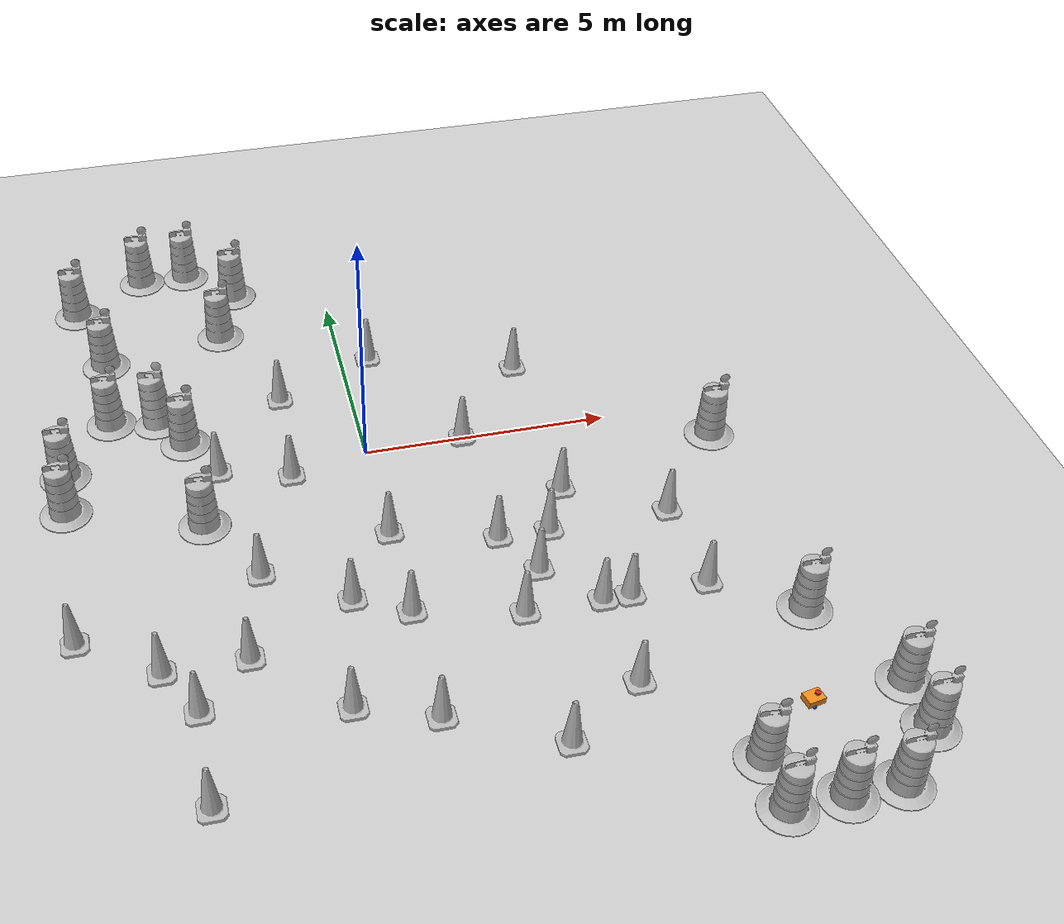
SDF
<sdf version="1.7">
 <world name="default">
  <light name="sun" type="directional">
   <pose>0 0 10 0 -0 0</pose>
   <diffuse>0.8 0.8 0.8 1</diffuse>
   <specular>0.2 0.2 0.2 1</specular>
   <attenuation>
    <range>1000</range>
    <constant>0.9</constant>
    <linear>0.01</linear>
    <quadratic>0.001</quadratic>
   </attenuation>
   <direction>-0.5 0.1 -0.9</direction>
   <spot><inner_angle>0</inner_angle><outer_angle>0</outer_angle><falloff>0</falloff></spot>
  </light>
  <model name="ground_plane">
   <static>1</static>
   <link name="link">
    <collision name="collision">
     <geometry><plane><normal>0 0 1</normal><size>100 100</size></plane></geometry>
     <surface>
      <contact><collide_bitmask>65535</collide_bitmask></contact>
      <friction><ode><mu>100</mu><mu2>50</mu2></ode></friction>
     </surface>
    </collision>
    <visual name="visual">
     <cast_shadows>0</cast_shadows>
     <geometry><plane><normal>0 0 1</normal><size>100 100</size></plane></geometry>
     <material>
      <script><uri>file://media/materials/scripts/gazebo.material</uri><name>Gazebo/Grey</name></script>
     </material>
    </visual>
   </link>
  </model>
  <gravity>0 0 -9.8</gravity>
  <magnetic_field>6e-06 2.3e-05 -4.2e-05</magnetic_field>
  <atmosphere type="adiabatic"/>
  <physics type="ode">
   <max_step_size>0.001</max_step_size>
   <real_time_factor>1</real_time_factor>
   <real_time_update_rate>1000</real_time_update_rate>
  </physics>
  <scene><ambient>0.4 0.4 0.4 1</ambient><background>0.7 0.7 0.7 1</background><shadows>1</shadows></scene>
  <audio><device>default</device></audio>
  <spherical_coordinates>
   <surface_model>EARTH_WGS84</surface_model>
   <latitude_deg>0</latitude_deg>
   <longitude_deg>0</longitude_deg>
   <elevation>0</elevation>
   <heading_deg>0</heading_deg>
  </spherical_coordinates>
  <model name="my_bot">
   <link name="base_link">
    <inertial>
     <pose>-0.071082 0 0.075033 0 -0 0</pose>
     <mass>0.61</mass>
     <inertia>
      <ixx>0.00482981</ixx>
      <ixy>0</ixy>
      <ixz>0.000516598</ixz>
      <iyy>0.00702444</iyy>
      <iyz>0</iyz>
      <izz>0.0081721</izz>
     </inertia>
    </inertial>
    <collision name="base_link_fixed_joint_lump__chassis_collision">
     <pose>-0.0585 0 0.059 0 -0 0</pose>
     <geometry><box><size>0.335 0.265 0.138</size></box></geometry>
    </collision>
    <collision name="base_link_fixed_joint_lump__caster_wheel_collision_1">
     <pose>-0.151 0 -0.023 0 -0 0</pose>
     <geometry><sphere><radius>0.01</radius></sphere></geometry>
     <surface><friction><ode><mu>0.001</mu><mu2>0.001</mu2></ode></friction></surface>
    </collision>
    <collision name="base_link_fixed_joint_lump__laser_frame_collision_2">
     <pose>-0.126 0 0.165 0 -0 0</pose>
     <geometry><cylinder><length>0.04</length><radius>0.05</radius></cylinder></geometry>
    </collision>
    <visual name="base_link_fixed_joint_lump__chassis_visual">
     <pose>-0.0585 0 0.059 0 -0 0</pose>
     <geometry><box><size>0.335 0.265 0.138</size></box></geometry>
     <material>
      <script><name>Gazebo/Orange</name><uri>file://media/materials/scripts/gazebo.material</uri></script>
     </material>
    </visual>
    <visual name="base_link_fixed_joint_lump__camera_link_visual_1">
     <pose>0.079 0 0.07 0 -0 0</pose>
     <geometry><box><size>0.01 0.03 0.03</size></box></geometry>
     <material>
      <script><name>Gazebo/Red</name><uri>file://media/materials/scripts/gazebo.material</uri></script>
     </material>
    </visual>
    <visual name="base_link_fixed_joint_lump__caster_wheel_visual_2">
     <pose>-0.151 0 -0.023 0 -0 0</pose>
     <geometry><sphere><radius>0.01</radius></sphere></geometry>
     <material>
      <script><name>Gazebo/White</name><uri>file://media/materials/scripts/gazebo.material</uri></script>
     </material>
    </visual>
    <visual name="base_link_fixed_joint_lump__laser_frame_visual_3">
     <pose>-0.126 0 0.165 0 -0 0</pose>
     <geometry><cylinder><length>0.04</length><radius>0.05</radius></cylinder></geometry>
     <material>
      <script><name>Gazebo/Red</name><uri>file://media/materials/scripts/gazebo.material</uri></script>
     </material>
    </visual>
    <sensor name="camera" type="camera">
     <visualize>1</visualize>
     <update_rate>10</update_rate>
     <camera>
      <horizontal_fov>1.089</horizontal_fov>
      <image><format>R8G8B8</format><width>640</width><height>480</height></image>
      <clip><near>0.05</near><far>8</far></clip>
     </camera>
     <plugin name="camera_controller" filename="libgazebo_ros_camera.so">
      <frame_name>camera_link_optical</frame_name>
     </plugin>
     <pose>0.079 0 0.07 0 -0 0</pose>
    </sensor>
    <sensor name="laser" type="ray">
     <visualize>1</visualize>
     <update_rate>10</update_rate>
     <ray>
      <scan>
       <horizontal>
        <samples>360</samples>
        <min_angle>-3.14</min_angle>
        <max_angle>3.14</max_angle>
        <resolution>1</resolution>
       </horizontal>
       <vertical><samples>1</samples><min_angle>0</min_angle><max_angle>0</max_angle></vertical>
      </scan>
      <range><min>0.3</min><max>12</max></range>
     </ray>
     <plugin name="laser_controller" filename="libgazebo_ros_ray_sensor.so">
      <ros><argument>~/out:=scan</argument></ros>
      <output_type>sensor_msgs/LaserScan</output_type>
      <frame_name>laser_frame</frame_name>
     </plugin>
     <pose>-0.126 0 0.165 0 -0 0</pose>
    </sensor>
   </link>
   <joint name="left_wheel_joint" type="revolute">
    <pose relative_to="base_link">0 0.1485 0 -1.5708 0 0</pose>
    <parent>base_link</parent>
    <child>left_wheel</child>
    <axis>
     <xyz>0 0 1</xyz>
     <limit><lower>-1e+16</lower><upper>1e+16</upper></limit>
     <dynamics><spring_reference>0</spring_reference><spring_stiffness>0</spring_stiffness></dynamics>
    </axis>
   </joint>
   <link name="left_wheel">
    <pose relative_to="left_wheel_joint">0 0 0 0 -0 0</pose>
    <inertial>
     <mass>0.05</mass>
     <inertia>
      <ixx>1.64292e-05</ixx>
      <ixy>0</ixy>
      <ixz>0</ixz>
      <iyy>1.64292e-05</iyy>
      <iyz>0</iyz>
      <izz>2.7225e-05</izz>
     </inertia>
    </inertial>
    <collision name="left_wheel_collision">
     <geometry><sphere><radius>0.033</radius></sphere></geometry>
    </collision>
    <visual name="left_wheel_visual">
     <geometry><cylinder><length>0.026</length><radius>0.033</radius></cylinder></geometry>
     <material>
      <script><name>Gazebo/Blue</name><uri>file://media/materials/scripts/gazebo.material</uri></script>
     </material>
    </visual>
   </link>
   <joint name="right_wheel_joint" type="revolute">
    <pose relative_to="base_link">0 -0.1485 0 1.5708 -0 0</pose>
    <parent>base_link</parent>
    <child>right_wheel</child>
    <axis>
     <xyz>0 0 -1</xyz>
     <limit><lower>-1e+16</lower><upper>1e+16</upper></limit>
     <dynamics><spring_reference>0</spring_reference><spring_stiffness>0</spring_stiffness></dynamics>
    </axis>
   </joint>
   <link name="right_wheel">
    <pose relative_to="right_wheel_joint">0 0 0 0 -0 0</pose>
    <inertial>
     <mass>0.05</mass>
     <inertia>
      <ixx>1.64292e-05</ixx>
      <ixy>0</ixy>
      <ixz>0</ixz>
      <iyy>1.64292e-05</iyy>
      <iyz>0</iyz>
      <izz>2.7225e-05</izz>
     </inertia>
    </inertial>
    <collision name="right_wheel_collision">
     <geometry><sphere><radius>0.033</radius></sphere></geometry>
    </collision>
    <visual name="right_wheel_visual">
     <geometry><cylinder><length>0.026</length><radius>0.033</radius></cylinder></geometry>
     <material>
      <script><name>Gazebo/Blue</name><uri>file://media/materials/scripts/gazebo.material</uri></script>
     </material>
    </visual>
   </link>
   <static>0</static>
   <plugin name="diff_drive" filename="libgazebo_ros_diff_drive.so">
    <left_joint>left_wheel_joint</left_joint>
    <right_joint>right_wheel_joint</right_joint>
    <wheel_separation>0.35</wheel_separation>
    <wheel_diameter>0.1</wheel_diameter>
    <max_wheel_torque>200</max_wheel_torque>
    <max_wheel_acceleration>10.0</max_wheel_acceleration>
    <odometry_frame>odom</odometry_frame>
    <robot_base_frame>base_link</robot_base_frame>
    <publish_odom>1</publish_odom>
    <publish_odom_tf>1</publish_odom_tf>
    <publish_wheel_tf>1</publish_wheel_tf>
   </plugin>
   <pose>6.22887 -8.04606 0.032997 -1.8e-05 1.9e-05 -2.95077</pose>
  </model>
  <model name="Construction Barrel">
   <link name="link">
    <inertial>
     <pose>0 0 0.4 0 -0 0</pose>
     <mass>500</mass>
     <inertia><ixx>51.2096</ixx><iyy>51.2096</iyy><izz>25</izz><ixy>0</ixy><ixz>0</ixz><iyz>0</iyz></inertia>
    </inertial>
    <collision name="collision">
     <geometry><mesh><uri>model://construction_barrel/meshes/construction_barrel.dae</uri></mesh></geometry>
    </collision>
    <visual name="visual">
     <geometry><mesh><uri>model://construction_barrel/meshes/construction_barrel.dae</uri></mesh></geometry>
    </visual>
   </link>
   <pose>-3.56836 1.04385 -0 0 -0 -0.001953</pose>
  </model>
  <model name="Construction Barrel_clone">
   <link name="link">
    <inertial>
     <pose>0 0 0.4 0 -0 0</pose>
     <mass>500</mass>
     <inertia><ixx>51.2096</ixx><iyy>51.2096</iyy><izz>25</izz><ixy>0</ixy><ixz>0</ixz><iyz>0</iyz></inertia>
    </inertial>
    <collision name="collision">
     <geometry><mesh><uri>model://construction_barrel/meshes/construction_barrel.dae</uri></mesh></geometry>
    </collision>
    <visual name="visual">
     <geometry><mesh><uri>model://construction_barrel/meshes/construction_barrel.dae</uri></mesh></geometry>
    </visual>
   </link>
   <pose>-6.00012 0.554069 -3e-06 -6e-06 -5e-06 -3.3e-05</pose>
  </model>
  <model name="Construction Barrel_clone_0">
   <link name="link">
    <inertial>
     <pose>0 0 0.4 0 -0 0</pose>
     <mass>500</mass>
     <inertia><ixx>51.2096</ixx><iyy>51.2096</iyy><izz>25</izz><ixy>0</ixy><ixz>0</ixz><iyz>0</iyz></inertia>
    </inertial>
    <collision name="collision">
     <geometry><mesh><uri>model://construction_barrel/meshes/construction_barrel.dae</uri></mesh></geometry>
    </collision>
    <visual name="visual">
     <geometry><mesh><uri>model://construction_barrel/meshes/construction_barrel.dae</uri></mesh></geometry>
    </visual>
   </link>
   <pose>-5.01001 2.00128 3.6e-05 -3e-05 0.000169 0.002303</pose>
  </model>
  <model name="Construction Barrel_clone_1">
   <link name="link">
    <inertial>
     <pose>0 0 0.4 0 -0 0</pose>
     <mass>500</mass>
     <inertia><ixx>51.2096</ixx><iyy>51.2096</iyy><izz>25</izz><ixy>0</ixy><ixz>0</ixz><iyz>0</iyz></inertia>
    </inertial>
    <collision name="collision">
     <geometry><mesh><uri>model://construction_barrel/meshes/construction_barrel.dae</uri></mesh></geometry>
    </collision>
    <visual name="visual">
     <geometry><mesh><uri>model://construction_barrel/meshes/construction_barrel.dae</uri></mesh></geometry>
    </visual>
   </link>
   <pose>-4.04418 1.71858 0.053636 -0.092781 -0.050303 -0.206497</pose>
  </model>
  <model name="Construction Barrel_clone_3">
   <link name="link">
    <inertial>
     <pose>0 0 0.4 0 -0 0</pose>
     <mass>500</mass>
     <inertia><ixx>51.2096</ixx><iyy>51.2096</iyy><izz>25</izz><ixy>0</ixy><ixz>0</ixz><iyz>0</iyz></inertia>
    </inertial>
    <collision name="collision">
     <geometry><mesh><uri>model://construction_barrel/meshes/construction_barrel.dae</uri></mesh></geometry>
    </collision>
    <visual name="visual">
     <geometry><mesh><uri>model://construction_barrel/meshes/construction_barrel.dae</uri></mesh></geometry>
    </visual>
   </link>
   <pose>-3.43126 -1.44315 1e-06 3e-06 2e-06 -3.3e-05</pose>
  </model>
  <model name="Construction Barrel_clone_4">
   <link name="link">
    <inertial>
     <pose>0 0 0.4 0 -0 0</pose>
     <mass>500</mass>
     <inertia><ixx>51.2096</ixx><iyy>51.2096</iyy><izz>25</izz><ixy>0</ixy><ixz>0</ixz><iyz>0</iyz></inertia>
    </inertial>
    <collision name="collision">
     <geometry><mesh><uri>model://construction_barrel/meshes/construction_barrel.dae</uri></mesh></geometry>
    </collision>
    <visual name="visual">
     <geometry><mesh><uri>model://construction_barrel/meshes/construction_barrel.dae</uri></mesh></geometry>
    </visual>
   </link>
   <pose>-6.02896 -0.525115 -2e-06 -7e-06 -4e-06 -3.7e-05</pose>
  </model>
  <model name="Construction Cone">
   <link name="link">
    <collision name="collision">
     <geometry>
      <mesh><scale>10 10 10</scale><uri>model://construction_cone/meshes/construction_cone.dae</uri></mesh>
     </geometry>
    </collision>
    <visual name="visual">
     <geometry>
      <mesh><scale>10 10 10</scale><uri>model://construction_cone/meshes/construction_cone.dae</uri></mesh>
     </geometry>
    </visual>
    <inertial>
     <inertia><ixx>1</ixx><ixy>0</ixy><ixz>0</ixz><iyy>1</iyy><iyz>0</iyz><izz>1</izz></inertia>
     <mass>1</mass>
    </inertial>
   </link>
   <pose>-1.58718 -0.411113 -0 -0 -1e-06 5.8e-05</pose>
  </model>
  <model name="Construction Cone_clone">
   <link name="link">
    <collision name="collision">
     <geometry>
      <mesh><scale>10 10 10</scale><uri>model://construction_cone/meshes/construction_cone.dae</uri></mesh>
     </geometry>
    </collision>
    <visual name="visual">
     <geometry>
      <mesh><scale>10 10 10</scale><uri>model://construction_cone/meshes/construction_cone.dae</uri></mesh>
     </geometry>
    </visual>
    <inertial>
     <inertia><ixx>1</ixx><ixy>0</ixy><ixz>0</ixz><iyy>1</iyy><iyz>0</iyz><izz>1</izz></inertia>
     <mass>1</mass>
    </inertial>
   </link>
   <pose>-1.4841 2 0 -0 -0 -0</pose>
  </model>
  <model name="Construction Cone_clone_0">
   <link name="link">
    <collision name="collision">
     <geometry>
      <mesh><scale>10 10 10</scale><uri>model://construction_cone/meshes/construction_cone.dae</uri></mesh>
     </geometry>
    </collision>
    <visual name="visual">
     <geometry>
      <mesh><scale>10 10 10</scale><uri>model://construction_cone/meshes/construction_cone.dae</uri></mesh>
     </geometry>
    </visual>
    <inertial>
     <inertia><ixx>1</ixx><ixy>0</ixy><ixz>0</ixz><iyy>1</iyy><iyz>0</iyz><izz>1</izz></inertia>
     <mass>1</mass>
    </inertial>
   </link>
   <pose>0.581023 3 -0 0 -1e-06 0</pose>
  </model>
  <model name="Construction Cone_clone_1">
   <link name="link">
    <collision name="collision">
     <geometry>
      <mesh><scale>10 10 10</scale><uri>model://construction_cone/meshes/construction_cone.dae</uri></mesh>
     </geometry>
    </collision>
    <visual name="visual">
     <geometry>
      <mesh><scale>10 10 10</scale><uri>model://construction_cone/meshes/construction_cone.dae</uri></mesh>
     </geometry>
    </visual>
    <inertial>
     <inertia><ixx>1</ixx><ixy>0</ixy><ixz>0</ixz><iyy>1</iyy><iyz>0</iyz><izz>1</izz></inertia>
     <mass>1</mass>
    </inertial>
   </link>
   <pose>2 0 -1e-05 -0 -0 -0</pose>
  </model>
  <model name="Construction Cone_clone_2">
   <link name="link">
    <collision name="collision">
     <geometry>
      <mesh><scale>10 10 10</scale><uri>model://construction_cone/meshes/construction_cone.dae</uri></mesh>
     </geometry>
    </collision>
    <visual name="visual">
     <geometry>
      <mesh><scale>10 10 10</scale><uri>model://construction_cone/meshes/construction_cone.dae</uri></mesh>
     </geometry>
    </visual>
    <inertial>
     <inertia><ixx>1</ixx><ixy>0</ixy><ixz>0</ixz><iyy>1</iyy><iyz>0</iyz><izz>1</izz></inertia>
     <mass>1</mass>
    </inertial>
   </link>
   <pose>2.53986 -4 -0 0 -1e-06 0</pose>
  </model>
  <model name="Construction Cone_clone_3">
   <link name="link">
    <collision name="collision">
     <geometry>
      <mesh><scale>10 10 10</scale><uri>model://construction_cone/meshes/construction_cone.dae</uri></mesh>
     </geometry>
    </collision>
    <visual name="visual">
     <geometry>
      <mesh><scale>10 10 10</scale><uri>model://construction_cone/meshes/construction_cone.dae</uri></mesh>
     </geometry>
    </visual>
    <inertial>
     <inertia><ixx>1</ixx><ixy>0</ixy><ixz>0</ixz><iyy>1</iyy><iyz>0</iyz><izz>1</izz></inertia>
     <mass>1</mass>
    </inertial>
   </link>
   <pose>-0 -4.53044 -0 0 -1e-06 0</pose>
  </model>
  <model name="Construction Cone_clone_4">
   <link name="link">
    <collision name="collision">
     <geometry>
      <mesh><scale>10 10 10</scale><uri>model://construction_cone/meshes/construction_cone.dae</uri></mesh>
     </geometry>
    </collision>
    <visual name="visual">
     <geometry>
      <mesh><scale>10 10 10</scale><uri>model://construction_cone/meshes/construction_cone.dae</uri></mesh>
     </geometry>
    </visual>
    <inertial>
     <inertia><ixx>1</ixx><ixy>0</ixy><ixz>0</ixz><iyy>1</iyy><iyz>0</iyz><izz>1</izz></inertia>
     <mass>1</mass>
    </inertial>
   </link>
   <pose>-1 -4 -0 0 -0 0</pose>
  </model>
  <model name="Construction Cone_clone_5">
   <link name="link">
    <collision name="collision">
     <geometry>
      <mesh><scale>10 10 10</scale><uri>model://construction_cone/meshes/construction_cone.dae</uri></mesh>
     </geometry>
    </collision>
    <visual name="visual">
     <geometry>
      <mesh><scale>10 10 10</scale><uri>model://construction_cone/meshes/construction_cone.dae</uri></mesh>
     </geometry>
    </visual>
    <inertial>
     <inertia><ixx>1</ixx><ixy>0</ixy><ixz>0</ixz><iyy>1</iyy><iyz>0</iyz><izz>1</izz></inertia>
     <mass>1</mass>
    </inertial>
   </link>
   <pose>-0 -2.43874 -0 0 -1e-06 0</pose>
  </model>
  <model name="Construction Cone_clone_6">
   <link name="link">
    <collision name="collision">
     <geometry>
      <mesh><scale>10 10 10</scale><uri>model://construction_cone/meshes/construction_cone.dae</uri></mesh>
     </geometry>
    </collision>
    <visual name="visual">
     <geometry>
      <mesh><scale>10 10 10</scale><uri>model://construction_cone/meshes/construction_cone.dae</uri></mesh>
     </geometry>
    </visual>
    <inertial>
     <inertia><ixx>1</ixx><ixy>0</ixy><ixz>0</ixz><iyy>1</iyy><iyz>0</iyz><izz>1</izz></inertia>
     <mass>1</mass>
    </inertial>
   </link>
   <pose>-1.43026 -6.47839 -0 0 -0 0</pose>
  </model>
  <model name="Construction Cone_clone_7">
   <link name="link">
    <collision name="collision">
     <geometry>
      <mesh><scale>10 10 10</scale><uri>model://construction_cone/meshes/construction_cone.dae</uri></mesh>
     </geometry>
    </collision>
    <visual name="visual">
     <geometry>
      <mesh><scale>10 10 10</scale><uri>model://construction_cone/meshes/construction_cone.dae</uri></mesh>
     </geometry>
    </visual>
    <inertial>
     <inertia><ixx>1</ixx><ixy>0</ixy><ixz>0</ixz><iyy>1</iyy><iyz>0</iyz><izz>1</izz></inertia>
     <mass>1</mass>
    </inertial>
   </link>
   <pose>-4.54887 -5 -0 0 -0 0</pose>
  </model>
  <model name="Construction Cone_clone_8">
   <link name="link">
    <collision name="collision">
     <geometry>
      <mesh><scale>10 10 10</scale><uri>model://construction_cone/meshes/construction_cone.dae</uri></mesh>
     </geometry>
    </collision>
    <visual name="visual">
     <geometry>
      <mesh><scale>10 10 10</scale><uri>model://construction_cone/meshes/construction_cone.dae</uri></mesh>
     </geometry>
    </visual>
    <inertial>
     <inertia><ixx>1</ixx><ixy>0</ixy><ixz>0</ixz><iyy>1</iyy><iyz>0</iyz><izz>1</izz></inertia>
     <mass>1</mass>
    </inertial>
   </link>
   <pose>-2.55016 -3 -0 0 -1e-06 0</pose>
  </model>
  <model name="Construction Cone_clone_9">
   <link name="link">
    <collision name="collision">
     <geometry>
      <mesh><scale>10 10 10</scale><uri>model://construction_cone/meshes/construction_cone.dae</uri></mesh>
     </geometry>
    </collision>
    <visual name="visual">
     <geometry>
      <mesh><scale>10 10 10</scale><uri>model://construction_cone/meshes/construction_cone.dae</uri></mesh>
     </geometry>
    </visual>
    <inertial>
     <inertia><ixx>1</ixx><ixy>0</ixy><ixz>0</ixz><iyy>1</iyy><iyz>0</iyz><izz>1</izz></inertia>
     <mass>1</mass>
    </inertial>
   </link>
   <pose>-3 -5 -0 0 -1e-06 0</pose>
  </model>
  <model name="Construction Cone_clone_10">
   <link name="link">
    <collision name="collision">
     <geometry>
      <mesh><scale>10 10 10</scale><uri>model://construction_cone/meshes/construction_cone.dae</uri></mesh>
     </geometry>
    </collision>
    <visual name="visual">
     <geometry>
      <mesh><scale>10 10 10</scale><uri>model://construction_cone/meshes/construction_cone.dae</uri></mesh>
     </geometry>
    </visual>
    <inertial>
     <inertia><ixx>1</ixx><ixy>0</ixy><ixz>0</ixz><iyy>1</iyy><iyz>0</iyz><izz>1</izz></inertia>
     <mass>1</mass>
    </inertial>
   </link>
   <pose>-4 -6 -0 0 -1e-06 0</pose>
  </model>
  <model name="Construction Cone_clone_11">
   <link name="link">
    <collision name="collision">
     <geometry>
      <mesh><scale>10 10 10</scale><uri>model://construction_cone/meshes/construction_cone.dae</uri></mesh>
     </geometry>
    </collision>
    <visual name="visual">
     <geometry>
      <mesh><scale>10 10 10</scale><uri>model://construction_cone/meshes/construction_cone.dae</uri></mesh>
     </geometry>
    </visual>
    <inertial>
     <inertia><ixx>1</ixx><ixy>0</ixy><ixz>0</ixz><iyy>1</iyy><iyz>0</iyz><izz>1</izz></inertia>
     <mass>1</mass>
    </inertial>
   </link>
   <pose>-4 -8 0 -0 -0 -0</pose>
  </model>
  <model name="Construction Cone_clone_12">
   <link name="link">
    <collision name="collision">
     <geometry>
      <mesh><scale>10 10 10</scale><uri>model://construction_cone/meshes/construction_cone.dae</uri></mesh>
     </geometry>
    </collision>
    <visual name="visual">
     <geometry>
      <mesh><scale>10 10 10</scale><uri>model://construction_cone/meshes/construction_cone.dae</uri></mesh>
     </geometry>
    </visual>
    <inertial>
     <inertia><ixx>1</ixx><ixy>0</ixy><ixz>0</ixz><iyy>1</iyy><iyz>0</iyz><izz>1</izz></inertia>
     <mass>1</mass>
    </inertial>
   </link>
   <pose>-0 -7 -0 0 -0 0</pose>
  </model>
  <model name="Construction Cone_clone_13">
   <link name="link">
    <collision name="collision">
     <geometry>
      <mesh><scale>10 10 10</scale><uri>model://construction_cone/meshes/construction_cone.dae</uri></mesh>
     </geometry>
    </collision>
    <visual name="visual">
     <geometry>
      <mesh><scale>10 10 10</scale><uri>model://construction_cone/meshes/construction_cone.dae</uri></mesh>
     </geometry>
    </visual>
    <inertial>
     <inertia><ixx>1</ixx><ixy>0</ixy><ixz>0</ixz><iyy>1</iyy><iyz>0</iyz><izz>1</izz></inertia>
     <mass>1</mass>
    </inertial>
   </link>
   <pose>2 -8 -0 0 -1e-06 0</pose>
  </model>
  <model name="Construction Cone_clone_14">
   <link name="link">
    <collision name="collision">
     <geometry>
      <mesh><scale>10 10 10</scale><uri>model://construction_cone/meshes/construction_cone.dae</uri></mesh>
     </geometry>
    </collision>
    <visual name="visual">
     <geometry>
      <mesh><scale>10 10 10</scale><uri>model://construction_cone/meshes/construction_cone.dae</uri></mesh>
     </geometry>
    </visual>
    <inertial>
     <inertia><ixx>1</ixx><ixy>0</ixy><ixz>0</ixz><iyy>1</iyy><iyz>0</iyz><izz>1</izz></inertia>
     <mass>1</mass>
    </inertial>
   </link>
   <pose>2 -5 -0 0 -1e-06 0</pose>
  </model>
  <model name="Construction Cone_clone_15">
   <link name="link">
    <collision name="collision">
     <geometry>
      <mesh><scale>10 10 10</scale><uri>model://construction_cone/meshes/construction_cone.dae</uri></mesh>
     </geometry>
    </collision>
    <visual name="visual">
     <geometry>
      <mesh><scale>10 10 10</scale><uri>model://construction_cone/meshes/construction_cone.dae</uri></mesh>
     </geometry>
    </visual>
    <inertial>
     <inertia><ixx>1</ixx><ixy>0</ixy><ixz>0</ixz><iyy>1</iyy><iyz>0</iyz><izz>1</izz></inertia>
     <mass>1</mass>
    </inertial>
   </link>
   <pose>3.47372 -5 -0 0 -0 0</pose>
  </model>
  <model name="Construction Cone_clone_16">
   <link name="link">
    <collision name="collision">
     <geometry>
      <mesh><scale>10 10 10</scale><uri>model://construction_cone/meshes/construction_cone.dae</uri></mesh>
     </geometry>
    </collision>
    <visual name="visual">
     <geometry>
      <mesh><scale>10 10 10</scale><uri>model://construction_cone/meshes/construction_cone.dae</uri></mesh>
     </geometry>
    </visual>
    <inertial>
     <inertia><ixx>1</ixx><ixy>0</ixy><ixz>0</ixz><iyy>1</iyy><iyz>0</iyz><izz>1</izz></inertia>
     <mass>1</mass>
    </inertial>
   </link>
   <pose>4 -5 -9e-06 0 -0 0</pose>
  </model>
  <model name="Construction Cone_clone_17">
   <link name="link">
    <collision name="collision">
     <geometry>
      <mesh><scale>10 10 10</scale><uri>model://construction_cone/meshes/construction_cone.dae</uri></mesh>
     </geometry>
    </collision>
    <visual name="visual">
     <geometry>
      <mesh><scale>10 10 10</scale><uri>model://construction_cone/meshes/construction_cone.dae</uri></mesh>
     </geometry>
    </visual>
    <inertial>
     <inertia><ixx>1</ixx><ixy>0</ixy><ixz>0</ixz><iyy>1</iyy><iyz>0</iyz><izz>1</izz></inertia>
     <mass>1</mass>
    </inertial>
   </link>
   <pose>3.51528 -7 -0 0 -1e-06 0</pose>
  </model>
  <model name="Construction Cone_clone_18">
   <link name="link">
    <collision name="collision">
     <geometry>
      <mesh><scale>10 10 10</scale><uri>model://construction_cone/meshes/construction_cone.dae</uri></mesh>
     </geometry>
    </collision>
    <visual name="visual">
     <geometry>
      <mesh><scale>10 10 10</scale><uri>model://construction_cone/meshes/construction_cone.dae</uri></mesh>
     </geometry>
    </visual>
    <inertial>
     <inertia><ixx>1</ixx><ixy>0</ixy><ixz>0</ixz><iyy>1</iyy><iyz>0</iyz><izz>1</izz></inertia>
     <mass>1</mass>
    </inertial>
   </link>
   <pose>5.485 -5 -0 0 -1e-06 0</pose>
  </model>
  <model name="Construction Cone_clone_19">
   <link name="link">
    <collision name="collision">
     <geometry>
      <mesh><scale>10 10 10</scale><uri>model://construction_cone/meshes/construction_cone.dae</uri></mesh>
     </geometry>
    </collision>
    <visual name="visual">
     <geometry>
      <mesh><scale>10 10 10</scale><uri>model://construction_cone/meshes/construction_cone.dae</uri></mesh>
     </geometry>
    </visual>
    <inertial>
     <inertia><ixx>1</ixx><ixy>0</ixy><ixz>0</ixz><iyy>1</iyy><iyz>0</iyz><izz>1</izz></inertia>
     <mass>1</mass>
    </inertial>
   </link>
   <pose>5.40063 -3 -8e-06 1e-06 -0 0</pose>
  </model>
  <model name="Construction Cone_clone_20">
   <link name="link">
    <collision name="collision">
     <geometry>
      <mesh><scale>10 10 10</scale><uri>model://construction_cone/meshes/construction_cone.dae</uri></mesh>
     </geometry>
    </collision>
    <visual name="visual">
     <geometry>
      <mesh><scale>10 10 10</scale><uri>model://construction_cone/meshes/construction_cone.dae</uri></mesh>
     </geometry>
    </visual>
    <inertial>
     <inertia><ixx>1</ixx><ixy>0</ixy><ixz>0</ixz><iyy>1</iyy><iyz>0</iyz><izz>1</izz></inertia>
     <mass>1</mass>
    </inertial>
   </link>
   <pose>3.59245 2 -1e-05 0 -0 0</pose>
  </model>
  <model name="Construction Cone_clone_21">
   <link name="link">
    <collision name="collision">
     <geometry>
      <mesh><scale>10 10 10</scale><uri>model://construction_cone/meshes/construction_cone.dae</uri></mesh>
     </geometry>
    </collision>
    <visual name="visual">
     <geometry>
      <mesh><scale>10 10 10</scale><uri>model://construction_cone/meshes/construction_cone.dae</uri></mesh>
     </geometry>
    </visual>
    <inertial>
     <inertia><ixx>1</ixx><ixy>0</ixy><ixz>0</ixz><iyy>1</iyy><iyz>0</iyz><izz>1</izz></inertia>
     <mass>1</mass>
    </inertial>
   </link>
   <pose>2 -3 -0 0 -1e-06 0</pose>
  </model>
  <model name="Construction Cone_clone_22">
   <link name="link">
    <collision name="collision">
     <geometry>
      <mesh><scale>10 10 10</scale><uri>model://construction_cone/meshes/construction_cone.dae</uri></mesh>
     </geometry>
    </collision>
    <visual name="visual">
     <geometry>
      <mesh><scale>10 10 10</scale><uri>model://construction_cone/meshes/construction_cone.dae</uri></mesh>
     </geometry>
    </visual>
    <inertial>
     <inertia><ixx>1</ixx><ixy>0</ixy><ixz>0</ixz><iyy>1</iyy><iyz>0</iyz><izz>1</izz></inertia>
     <mass>1</mass>
    </inertial>
   </link>
   <pose>3.00507 -3.02034 -0.003109 4.4e-05 1.2e-05 1.6e-05</pose>
  </model>
  <model name="Construction Cone_clone_23">
   <link name="link">
    <collision name="collision">
     <geometry>
      <mesh><scale>10 10 10</scale><uri>model://construction_cone/meshes/construction_cone.dae</uri></mesh>
     </geometry>
    </collision>
    <visual name="visual">
     <geometry>
      <mesh><scale>10 10 10</scale><uri>model://construction_cone/meshes/construction_cone.dae</uri></mesh>
     </geometry>
    </visual>
    <inertial>
     <inertia><ixx>1</ixx><ixy>0</ixy><ixz>0</ixz><iyy>1</iyy><iyz>0</iyz><izz>1</izz></inertia>
     <mass>1</mass>
    </inertial>
   </link>
   <pose>3.54895 -1.95076 -1e-05 0 0 -0.009205</pose>
  </model>
  <model name="Construction Cone_clone_24">
   <link name="link">
    <collision name="collision">
     <geometry>
      <mesh><scale>10 10 10</scale><uri>model://construction_cone/meshes/construction_cone.dae</uri></mesh>
     </geometry>
    </collision>
    <visual name="visual">
     <geometry>
      <mesh><scale>10 10 10</scale><uri>model://construction_cone/meshes/construction_cone.dae</uri></mesh>
     </geometry>
    </visual>
    <inertial>
     <inertia><ixx>1</ixx><ixy>0</ixy><ixz>0</ixz><iyy>1</iyy><iyz>0</iyz><izz>1</izz></inertia>
     <mass>1</mass>
    </inertial>
   </link>
   <pose>-3 0 -0 0 -1e-06 0</pose>
  </model>
  <model name="Construction Cone_clone_7_clone">
   <link name="link">
    <collision name="collision">
     <geometry>
      <mesh><scale>10 10 10</scale><uri>model://construction_cone/meshes/construction_cone.dae</uri></mesh>
     </geometry>
    </collision>
    <visual name="visual">
     <geometry>
      <mesh><scale>10 10 10</scale><uri>model://construction_cone/meshes/construction_cone.dae</uri></mesh>
     </geometry>
    </visual>
    <inertial>
     <inertia><ixx>1</ixx><ixy>0</ixy><ixz>0</ixz><iyy>1</iyy><iyz>0</iyz><izz>1</izz></inertia>
     <mass>1</mass>
    </inertial>
   </link>
   <pose>-6 -4 -0 0 -1e-06 0</pose>
  </model>
  <model name="Construction Barrel_clone_4_clone">
   <link name="link">
    <inertial>
     <pose>0 0 0.4 0 -0 0</pose>
     <mass>500</mass>
     <inertia><ixx>51.2096</ixx><iyy>51.2096</iyy><izz>25</izz><ixy>0</ixy><ixz>0</ixz><iyz>0</iyz></inertia>
    </inertial>
    <collision name="collision">
     <geometry><mesh><uri>model://construction_barrel/meshes/construction_barrel.dae</uri></mesh></geometry>
    </collision>
    <visual name="visual">
     <geometry><mesh><uri>model://construction_barrel/meshes/construction_barrel.dae</uri></mesh></geometry>
    </visual>
   </link>
   <pose>6.99999 -1.00002 -2e-06 -7e-06 -4e-06 -3.7e-05</pose>
  </model>
  <model name="Construction Barrel_clone_4_clone_0">
   <link name="link">
    <inertial>
     <pose>0 0 0.4 0 -0 0</pose>
     <mass>500</mass>
     <inertia><ixx>51.2096</ixx><iyy>51.2096</iyy><izz>25</izz><ixy>0</ixy><ixz>0</ixz><iyz>0</iyz></inertia>
    </inertial>
    <collision name="collision">
     <geometry><mesh><uri>model://construction_barrel/meshes/construction_barrel.dae</uri></mesh></geometry>
    </collision>
    <visual name="visual">
     <geometry><mesh><uri>model://construction_barrel/meshes/construction_barrel.dae</uri></mesh></geometry>
    </visual>
   </link>
   <pose>-5.00001 3.99999 -1e-06 3e-06 7e-06 -3.4e-05</pose>
  </model>
  <model name="Construction Barrel_clone_4_clone_1">
   <link name="link">
    <inertial>
     <pose>0 0 0.4 0 -0 0</pose>
     <mass>500</mass>
     <inertia><ixx>51.2096</ixx><iyy>51.2096</iyy><izz>25</izz><ixy>0</ixy><ixz>0</ixz><iyz>0</iyz></inertia>
    </inertial>
    <collision name="collision">
     <geometry><mesh><uri>model://construction_barrel/meshes/construction_barrel.dae</uri></mesh></geometry>
    </collision>
    <visual name="visual">
     <geometry><mesh><uri>model://construction_barrel/meshes/construction_barrel.dae</uri></mesh></geometry>
    </visual>
   </link>
   <pose>-5.52633 5.99999 -0 0 -0 -3.3e-05</pose>
  </model>
  <model name="Construction Barrel_clone_4_clone_2">
   <link name="link">
    <inertial>
     <pose>0 0 0.4 0 -0 0</pose>
     <mass>500</mass>
     <inertia><ixx>51.2096</ixx><iyy>51.2096</iyy><izz>25</izz><ixy>0</ixy><ixz>0</ixz><iyz>0</iyz></inertia>
    </inertial>
    <collision name="collision">
     <geometry><mesh><uri>model://construction_barrel/meshes/construction_barrel.dae</uri></mesh></geometry>
    </collision>
    <visual name="visual">
     <geometry><mesh><uri>model://construction_barrel/meshes/construction_barrel.dae</uri></mesh></geometry>
    </visual>
   </link>
   <pose>-4.01152 6.99967 -2e-06 0 7e-06 -0.022696</pose>
  </model>
  <model name="Construction Barrel_clone_4_clone_3">
   <link name="link">
    <inertial>
     <pose>0 0 0.4 0 -0 0</pose>
     <mass>500</mass>
     <inertia><ixx>51.2096</ixx><iyy>51.2096</iyy><izz>25</izz><ixy>0</ixy><ixz>0</ixz><iyz>0</iyz></inertia>
    </inertial>
    <collision name="collision">
     <geometry><mesh><uri>model://construction_barrel/meshes/construction_barrel.dae</uri></mesh></geometry>
    </collision>
    <visual name="visual">
     <geometry><mesh><uri>model://construction_barrel/meshes/construction_barrel.dae</uri></mesh></geometry>
    </visual>
   </link>
   <pose>-2.99136 6.99958 -1e-06 4e-06 -2e-06 0.020711</pose>
  </model>
  <model name="Construction Barrel_clone_4_clone_4">
   <link name="link">
    <inertial>
     <pose>0 0 0.4 0 -0 0</pose>
     <mass>500</mass>
     <inertia><ixx>51.2096</ixx><iyy>51.2096</iyy><izz>25</izz><ixy>0</ixy><ixz>0</ixz><iyz>0</iyz></inertia>
    </inertial>
    <collision name="collision">
     <geometry><mesh><uri>model://construction_barrel/meshes/construction_barrel.dae</uri></mesh></geometry>
    </collision>
    <visual name="visual">
     <geometry><mesh><uri>model://construction_barrel/meshes/construction_barrel.dae</uri></mesh></geometry>
    </visual>
   </link>
   <pose>-2.00001 5.99999 -1e-06 -8e-06 -2e-06 -3.2e-05</pose>
  </model>
  <model name="Construction Barrel_clone_4_clone_5">
   <link name="link">
    <inertial>
     <pose>0 0 0.4 0 -0 0</pose>
     <mass>500</mass>
     <inertia><ixx>51.2096</ixx><iyy>51.2096</iyy><izz>25</izz><ixy>0</ixy><ixz>0</ixz><iyz>0</iyz></inertia>
    </inertial>
    <collision name="collision">
     <geometry><mesh><uri>model://construction_barrel/meshes/construction_barrel.dae</uri></mesh></geometry>
    </collision>
    <visual name="visual">
     <geometry><mesh><uri>model://construction_barrel/meshes/construction_barrel.dae</uri></mesh></geometry>
    </visual>
   </link>
   <pose>-2.46027 4.5062 -1e-06 -8e-06 -2e-06 -3.3e-05</pose>
  </model>
  <model name="Construction Barrel_clone_4_clone_6">
   <link name="link">
    <inertial>
     <pose>0 0 0.4 0 -0 0</pose>
     <mass>500</mass>
     <inertia><ixx>51.2096</ixx><iyy>51.2096</iyy><izz>25</izz><ixy>0</ixy><ixz>0</ixz><iyz>0</iyz></inertia>
    </inertial>
    <collision name="collision">
     <geometry><mesh><uri>model://construction_barrel/meshes/construction_barrel.dae</uri></mesh></geometry>
    </collision>
    <visual name="visual">
     <geometry><mesh><uri>model://construction_barrel/meshes/construction_barrel.dae</uri></mesh></geometry>
    </visual>
   </link>
   <pose>6.04584 -10.0087 0.013555 0.002323 -0.026587 0.017536</pose>
  </model>
  <model name="Construction Barrel_clone_4_clone_7">
   <link name="link">
    <inertial>
     <pose>0 0 0.4 0 -0 0</pose>
     <mass>500</mass>
     <inertia><ixx>51.2096</ixx><iyy>51.2096</iyy><izz>25</izz><ixy>0</ixy><ixz>0</ixz><iyz>0</iyz></inertia>
    </inertial>
    <collision name="collision">
     <geometry><mesh><uri>model://construction_barrel/meshes/construction_barrel.dae</uri></mesh></geometry>
    </collision>
    <visual name="visual">
     <geometry><mesh><uri>model://construction_barrel/meshes/construction_barrel.dae</uri></mesh></geometry>
    </visual>
   </link>
   <pose>4.99822 -10.0188 -0 0 -0 0.065797</pose>
  </model>
  <model name="Construction Barrel_clone_4_clone_8">
   <link name="link">
    <inertial>
     <pose>0 0 0.4 0 -0 0</pose>
     <mass>500</mass>
     <inertia><ixx>51.2096</ixx><iyy>51.2096</iyy><izz>25</izz><ixy>0</ixy><ixz>0</ixz><iyz>0</iyz></inertia>
    </inertial>
    <collision name="collision">
     <geometry><mesh><uri>model://construction_barrel/meshes/construction_barrel.dae</uri></mesh></geometry>
    </collision>
    <visual name="visual">
     <geometry><mesh><uri>model://construction_barrel/meshes/construction_barrel.dae</uri></mesh></geometry>
    </visual>
   </link>
   <pose>5.00219 -9.0007 0 0 0 -0.06399</pose>
  </model>
  <model name="Construction Barrel_clone_4_clone_9">
   <link name="link">
    <inertial>
     <pose>0 0 0.4 0 -0 0</pose>
     <mass>500</mass>
     <inertia><ixx>51.2096</ixx><iyy>51.2096</iyy><izz>25</izz><ixy>0</ixy><ixz>0</ixz><iyz>0</iyz></inertia>
    </inertial>
    <collision name="collision">
     <geometry><mesh><uri>model://construction_barrel/meshes/construction_barrel.dae</uri></mesh></geometry>
    </collision>
    <visual name="visual">
     <geometry><mesh><uri>model://construction_barrel/meshes/construction_barrel.dae</uri></mesh></geometry>
    </visual>
   </link>
   <pose>8.00347 -9.00249 -2e-06 7e-06 4e-06 0.006601</pose>
  </model>
  <model name="Construction Barrel_clone_4_clone_10">
   <link name="link">
    <inertial>
     <pose>0 0 0.4 0 -0 0</pose>
     <mass>500</mass>
     <inertia><ixx>51.2096</ixx><iyy>51.2096</iyy><izz>25</izz><ixy>0</ixy><ixz>0</ixz><iyz>0</iyz></inertia>
    </inertial>
    <collision name="collision">
     <geometry><mesh><uri>model://construction_barrel/meshes/construction_barrel.dae</uri></mesh></geometry>
    </collision>
    <visual name="visual">
     <geometry><mesh><uri>model://construction_barrel/meshes/construction_barrel.dae</uri></mesh></geometry>
    </visual>
   </link>
   <pose>8.01031 -7.98242 -1e-06 -1e-06 -0 -0.019899</pose>
  </model>
  <model name="Construction Barrel_clone_4_clone_11">
   <link name="link">
    <inertial>
     <pose>0 0 0.4 0 -0 0</pose>
     <mass>500</mass>
     <inertia><ixx>51.2096</ixx><iyy>51.2096</iyy><izz>25</izz><ixy>0</ixy><ixz>0</ixz><iyz>0</iyz></inertia>
    </inertial>
    <collision name="collision">
     <geometry><mesh><uri>model://construction_barrel/meshes/construction_barrel.dae</uri></mesh></geometry>
    </collision>
    <visual name="visual">
     <geometry><mesh><uri>model://construction_barrel/meshes/construction_barrel.dae</uri></mesh></geometry>
    </visual>
   </link>
   <pose>7 -6 -0 0 0 -3e-05</pose>
  </model>
  <model name="Construction Barrel_clone_4_clone_12">
   <link name="link">
    <inertial>
     <pose>0 0 0.4 0 -0 0</pose>
     <mass>500</mass>
     <inertia><ixx>51.2096</ixx><iyy>51.2096</iyy><izz>25</izz><ixy>0</ixy><ixz>0</ixz><iyz>0</iyz></inertia>
    </inertial>
    <collision name="collision">
     <geometry><mesh><uri>model://construction_barrel/meshes/construction_barrel.dae</uri></mesh></geometry>
    </collision>
    <visual name="visual">
     <geometry><mesh><uri>model://construction_barrel/meshes/construction_barrel.dae</uri></mesh></geometry>
    </visual>
   </link>
   <pose>7.04254 -9.98554 -0 1e-06 -0 0.034723</pose>
  </model>
 </world>
</sdf>
